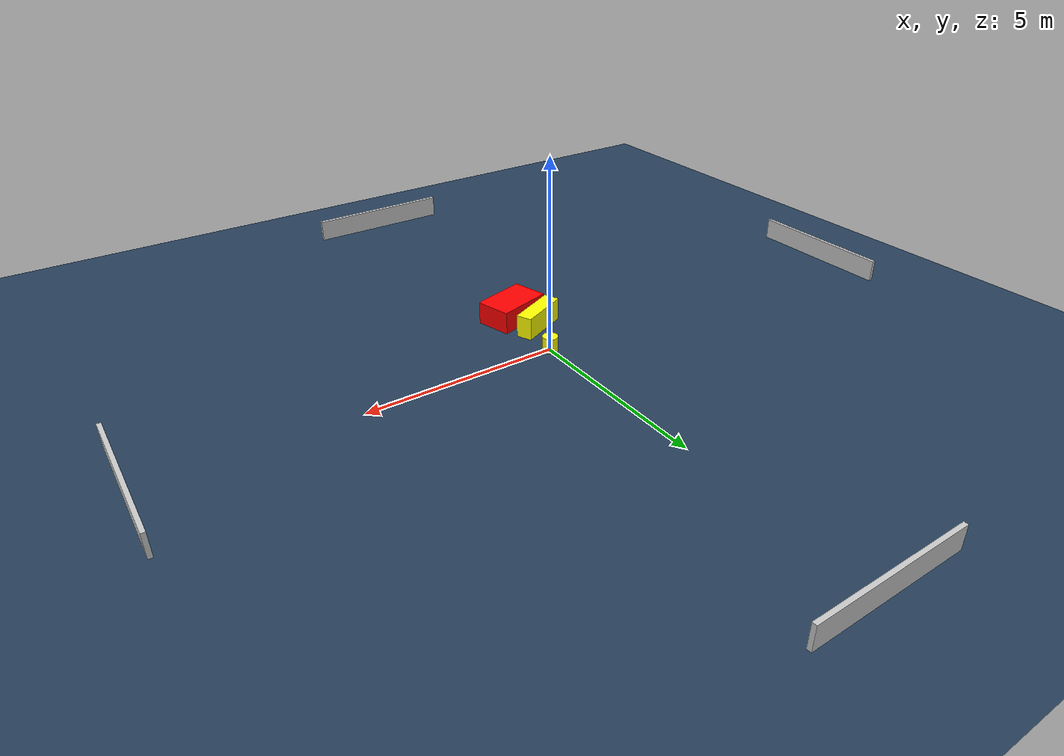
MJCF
<?xml version="1.0" ?>
<mujoco model="generated_environment">
  <option timestep="0.01" integrator="RK4" cone="elliptic"/>
  <default>
    <geom density="1"/>
  </default>
  <asset>
    <texture builtin="gradient" height="3072" name="skybox" rgb1="0.3 0.5 0.7" rgb2="0 0 0" type="skybox" width="512"/>
    <texture builtin="checker" height="300" name="groundplane" rgb1="0.2 0.3 0.4" rgb2="0.1 0.2 0.3" type="2d" width="300"/>
    <material name="groundplane" reflectance="0.2" texrepeat="5 5" texture="groundplane"/>
  </asset>
  <worldbody>
    <light dir="0 0 -1" directional="true" pos="0 0 1.5"/>
    <geom condim="3" friction="0.5 0.005 0.001" material="groundplane" name="floor" pos="0 0 0" size="0 0 0.05" type="plane"/>
    <body name="walls">
      <geom name="wall_1" condim="4" pos="-10.0 0.0 0.3" rgba="0.800000011920929 0.800000011920929 0.800000011920929 1.0" size="0.05 2.0 0.3" type="box"/>
      <geom name="wall_2" condim="4" pos="10.0 0.0 0.3" rgba="0.800000011920929 0.800000011920929 0.800000011920929 1.0" size="0.05 2.0 0.3" type="box"/>
      <geom name="wall_3" condim="4" pos="0.0 -10.0 0.3" rgba="0.800000011920929 0.800000011920929 0.800000011920929 1.0" size="2.0 0.05 0.3" type="box"/>
      <geom name="wall_4" condim="4" pos="0.0 10.0 0.3" rgba="0.800000011920929 0.800000011920929 0.800000011920929 1.0" size="2.0 0.05 0.3" type="box"/>
    </body>
    <body name="robot">
      <joint name="joint_x" type="slide" pos="0 0 0" axis="1 0 0"/>
      <joint name="joint_y" type="slide" pos="0 0 0" axis="0 1 0"/>
      <geom name="robot" type="cylinder" pos="0.0 0.0 0.2" size="0.2 0.2 0.0" mass="5.0" friction="1.0 0.005 0.0001" condim="4" rgba="1.0 1.0 0.0 1.0"/>
    </body>
    <body name="obstacle_1_movable">
      <geom name="obstacle_1_movable" condim="4" pos="-0.4148321461124539 -1.16262928746805 0.3" euler="0 0 114.28110335624832" friction="0.0 0.005 0.001" rgba="1.0 1.0 0.0 1.0" size="0.20840109068850846 0.688567330418568 0.3" type="box" mass="0.1"/>
      <joint type="free"/>
    </body>
    <body name="obstacle_2_static">
      <geom name="obstacle_2_static" condim="4" pos="-0.12168221354529613 -1.978196086864318 0.3" euler="0 0 15.575909710231182" friction="0.0 0.005 0.001" rgba="1.0 0.0 0.0 1.0" size="0.7401008057481839 0.48368523981215683 0.3" type="box"/>
    </body>
  </worldbody>
  <actuator>
    <motor name="actuator_x" joint="joint_x" gear="1" ctrlrange="-1 1"/>
    <motor name="actuator_y" joint="joint_y" gear="1" ctrlrange="-1 1"/>
  </actuator>
</mujoco>
